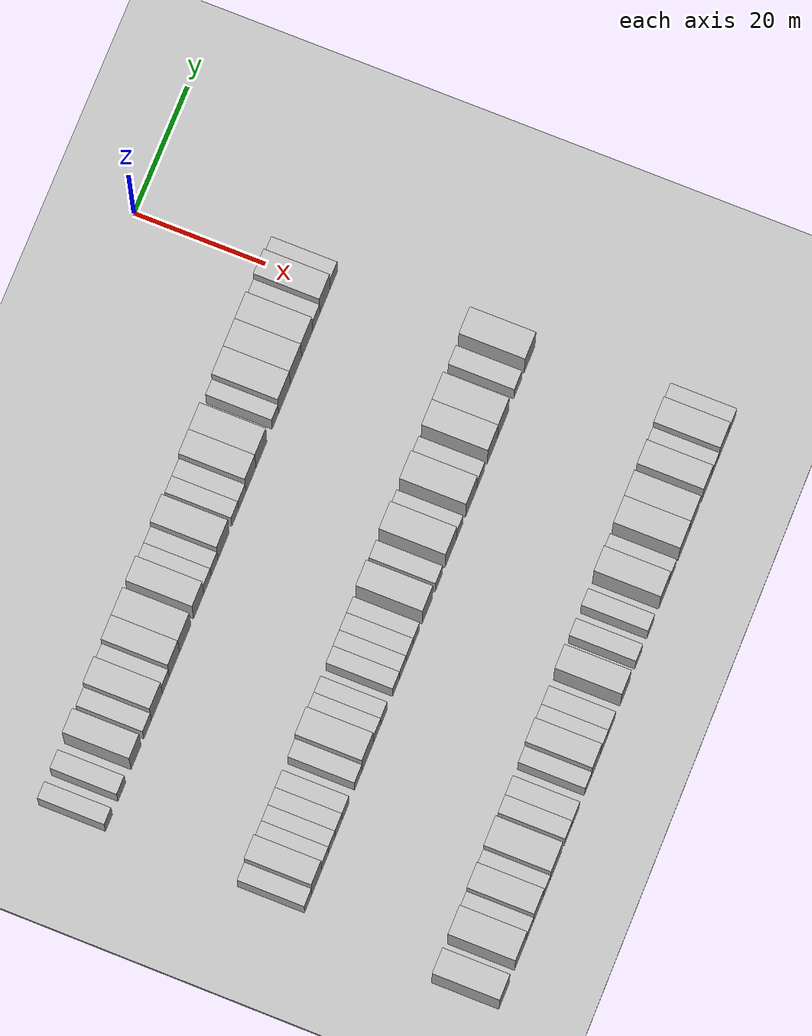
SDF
<sdf version="1.6">
 <world name="default">
  <include><name>ground_plane_1</name><uri>model://HANNAS_ground_plane</uri></include>
  <include>
   <name>ground_plane_2</name>
   <uri>model://HANNAS_ground_plane</uri>
   <pose>100 0 0  0 0 0</pose>
  </include>
  <model name="building_51">
   <static>1</static>
   <pose>25.0000 -82.7685 0 0.000000 0.000000 0.000000</pose>
   <link name="link">
    <pose>0 0 3.00 0 0 0</pose>
    <collision name="collision"><geometry><box><size>10.0000 2.5475 6.0000</size></box></geometry></collision>
    <visual name="visual">
     <cast_shadows>0</cast_shadows>
     <geometry><box><size>10.0000 2.5475 6.0000</size></box></geometry>
     <material>
      <script>
       <uri>model://HANNAS_wall/materials/scripts</uri>
       <uri>model://HANNAS_wall/materials/textures</uri>
       <name>vrc/HANNAS_wall</name>
      </script>
     </material>
    </visual>
   </link>
  </model>
  <model name="building_52">
   <static>1</static>
   <pose>25.0000 -78.0742 0 0.000000 0.000000 0.000000</pose>
   <link name="link">
    <pose>0 0 3.00 0 0 0</pose>
    <collision name="collision"><geometry><box><size>10.0000 2.8412 6.0000</size></box></geometry></collision>
    <visual name="visual">
     <cast_shadows>0</cast_shadows>
     <geometry><box><size>10.0000 2.8412 6.0000</size></box></geometry>
     <material>
      <script>
       <uri>model://HANNAS_wall/materials/scripts</uri>
       <uri>model://HANNAS_wall/materials/textures</uri>
       <name>vrc/HANNAS_wall</name>
      </script>
     </material>
    </visual>
   </link>
  </model>
  <model name="building_53">
   <static>1</static>
   <pose>25.0000 -72.8111 0 0.000000 0.000000 0.000000</pose>
   <link name="link">
    <pose>0 0 4.50 0 0 0</pose>
    <collision name="collision"><geometry><box><size>10.0000 3.6848 9.0000</size></box></geometry></collision>
    <visual name="visual">
     <cast_shadows>0</cast_shadows>
     <geometry><box><size>10.0000 3.6848 9.0000</size></box></geometry>
     <material>
      <script>
       <uri>model://HANNAS_wall/materials/scripts</uri>
       <uri>model://HANNAS_wall/materials/textures</uri>
       <name>vrc/HANNAS_wall</name>
      </script>
     </material>
    </visual>
   </link>
  </model>
  <model name="building_54">
   <static>1</static>
   <pose>25.0000 -68.5531 0 0.000000 0.000000 0.000000</pose>
   <link name="link">
    <pose>0 0 3.00 0 0 0</pose>
    <collision name="collision"><geometry><box><size>10.0000 2.8312 6.0000</size></box></geometry></collision>
    <visual name="visual">
     <cast_shadows>0</cast_shadows>
     <geometry><box><size>10.0000 2.8312 6.0000</size></box></geometry>
     <material>
      <script>
       <uri>model://HANNAS_wall/materials/scripts</uri>
       <uri>model://HANNAS_wall/materials/textures</uri>
       <name>vrc/HANNAS_wall</name>
      </script>
     </material>
    </visual>
   </link>
  </model>
  <model name="building_55">
   <static>1</static>
   <pose>25.0000 -65.1235 0 0.000000 0.000000 0.000000</pose>
   <link name="link">
    <pose>0 0 4.50 0 0 0</pose>
    <collision name="collision"><geometry><box><size>10.0000 4.0279 9.0000</size></box></geometry></collision>
    <visual name="visual">
     <cast_shadows>0</cast_shadows>
     <geometry><box><size>10.0000 4.0279 9.0000</size></box></geometry>
     <material>
      <script>
       <uri>model://HANNAS_wall/materials/scripts</uri>
       <uri>model://HANNAS_wall/materials/textures</uri>
       <name>vrc/HANNAS_wall</name>
      </script>
     </material>
    </visual>
   </link>
  </model>
  <model name="building_56">
   <static>1</static>
   <pose>25.0000 -61.8055 0 0.000000 0.000000 0.000000</pose>
   <link name="link">
    <pose>0 0 3.00 0 0 0</pose>
    <collision name="collision"><geometry><box><size>10.0000 2.6081 6.0000</size></box></geometry></collision>
    <visual name="visual">
     <cast_shadows>0</cast_shadows>
     <geometry><box><size>10.0000 2.6081 6.0000</size></box></geometry>
     <material>
      <script>
       <uri>model://HANNAS_wall/materials/scripts</uri>
       <uri>model://HANNAS_wall/materials/textures</uri>
       <name>vrc/HANNAS_wall</name>
      </script>
     </material>
    </visual>
   </link>
  </model>
  <model name="building_57">
   <static>1</static>
   <pose>25.0000 -58.6286 0 0.000000 0.000000 0.000000</pose>
   <link name="link">
    <pose>0 0 4.50 0 0 0</pose>
    <collision name="collision"><geometry><box><size>10.0000 3.7456 9.0000</size></box></geometry></collision>
    <visual name="visual">
     <cast_shadows>0</cast_shadows>
     <geometry><box><size>10.0000 3.7456 9.0000</size></box></geometry>
     <material>
      <script>
       <uri>model://HANNAS_wall/materials/scripts</uri>
       <uri>model://HANNAS_wall/materials/textures</uri>
       <name>vrc/HANNAS_wall</name>
      </script>
     </material>
    </visual>
   </link>
  </model>
  <model name="building_58">
   <static>1</static>
   <pose>25.0000 -54.6424 0 0.000000 0.000000 0.000000</pose>
   <link name="link">
    <pose>0 0 4.50 0 0 0</pose>
    <collision name="collision"><geometry><box><size>10.0000 4.2268 9.0000</size></box></geometry></collision>
    <visual name="visual">
     <cast_shadows>0</cast_shadows>
     <geometry><box><size>10.0000 4.2268 9.0000</size></box></geometry>
     <material>
      <script>
       <uri>model://HANNAS_wall/materials/scripts</uri>
       <uri>model://HANNAS_wall/materials/textures</uri>
       <name>vrc/HANNAS_wall</name>
      </script>
     </material>
    </visual>
   </link>
  </model>
  <model name="building_59">
   <static>1</static>
   <pose>25.0000 -49.6313 0 0.000000 0.000000 0.000000</pose>
   <link name="link">
    <pose>0 0 4.50 0 0 0</pose>
    <collision name="collision"><geometry><box><size>10.0000 3.7955 9.0000</size></box></geometry></collision>
    <visual name="visual">
     <cast_shadows>0</cast_shadows>
     <geometry><box><size>10.0000 3.7955 9.0000</size></box></geometry>
     <material>
      <script>
       <uri>model://HANNAS_wall/materials/scripts</uri>
       <uri>model://HANNAS_wall/materials/textures</uri>
       <name>vrc/HANNAS_wall</name>
      </script>
     </material>
    </visual>
   </link>
  </model>
  <model name="building_60">
   <static>1</static>
   <pose>25.0000 -46.3752 0 0.000000 0.000000 0.000000</pose>
   <link name="link">
    <pose>0 0 3.00 0 0 0</pose>
    <collision name="collision"><geometry><box><size>10.0000 2.7167 6.0000</size></box></geometry></collision>
    <visual name="visual">
     <cast_shadows>0</cast_shadows>
     <geometry><box><size>10.0000 2.7167 6.0000</size></box></geometry>
     <material>
      <script>
       <uri>model://HANNAS_wall/materials/scripts</uri>
       <uri>model://HANNAS_wall/materials/textures</uri>
       <name>vrc/HANNAS_wall</name>
      </script>
     </material>
    </visual>
   </link>
  </model>
  <model name="building_61">
   <static>1</static>
   <pose>25.0000 -43.7608 0 0.000000 0.000000 0.000000</pose>
   <link name="link">
    <pose>0 0 3.00 0 0 0</pose>
    <collision name="collision"><geometry><box><size>10.0000 2.5121 6.0000</size></box></geometry></collision>
    <visual name="visual">
     <cast_shadows>0</cast_shadows>
     <geometry><box><size>10.0000 2.5121 6.0000</size></box></geometry>
     <material>
      <script>
       <uri>model://HANNAS_wall/materials/scripts</uri>
       <uri>model://HANNAS_wall/materials/textures</uri>
       <name>vrc/HANNAS_wall</name>
      </script>
     </material>
    </visual>
   </link>
  </model>
  <model name="building_62">
   <static>1</static>
   <pose>25.0000 -40.3799 0 0.000000 0.000000 0.000000</pose>
   <link name="link">
    <pose>0 0 4.50 0 0 0</pose>
    <collision name="collision"><geometry><box><size>10.0000 4.2499 9.0000</size></box></geometry></collision>
    <visual name="visual">
     <cast_shadows>0</cast_shadows>
     <geometry><box><size>10.0000 4.2499 9.0000</size></box></geometry>
     <material>
      <script>
       <uri>model://HANNAS_wall/materials/scripts</uri>
       <uri>model://HANNAS_wall/materials/textures</uri>
       <name>vrc/HANNAS_wall</name>
      </script>
     </material>
    </visual>
   </link>
  </model>
  <model name="building_63">
   <static>1</static>
   <pose>25.0000 -35.9774 0 0.000000 0.000000 0.000000</pose>
   <link name="link">
    <pose>0 0 3.00 0 0 0</pose>
    <collision name="collision"><geometry><box><size>10.0000 2.5551 6.0000</size></box></geometry></collision>
    <visual name="visual">
     <cast_shadows>0</cast_shadows>
     <geometry><box><size>10.0000 2.5551 6.0000</size></box></geometry>
     <material>
      <script>
       <uri>model://HANNAS_wall/materials/scripts</uri>
       <uri>model://HANNAS_wall/materials/textures</uri>
       <name>vrc/HANNAS_wall</name>
      </script>
     </material>
    </visual>
   </link>
  </model>
  <model name="building_64">
   <static>1</static>
   <pose>25.0000 -33.3610 0 0.000000 0.000000 0.000000</pose>
   <link name="link">
    <pose>0 0 3.00 0 0 0</pose>
    <collision name="collision"><geometry><box><size>10.0000 2.6778 6.0000</size></box></geometry></collision>
    <visual name="visual">
     <cast_shadows>0</cast_shadows>
     <geometry><box><size>10.0000 2.6778 6.0000</size></box></geometry>
     <material>
      <script>
       <uri>model://HANNAS_wall/materials/scripts</uri>
       <uri>model://HANNAS_wall/materials/textures</uri>
       <name>vrc/HANNAS_wall</name>
      </script>
     </material>
    </visual>
   </link>
  </model>
  <model name="building_65">
   <static>1</static>
   <pose>25.0000 -30.1258 0 0.000000 0.000000 0.000000</pose>
   <link name="link">
    <pose>0 0 4.50 0 0 0</pose>
    <collision name="collision"><geometry><box><size>10.0000 3.7925 9.0000</size></box></geometry></collision>
    <visual name="visual">
     <cast_shadows>0</cast_shadows>
     <geometry><box><size>10.0000 3.7925 9.0000</size></box></geometry>
     <material>
      <script>
       <uri>model://HANNAS_wall/materials/scripts</uri>
       <uri>model://HANNAS_wall/materials/textures</uri>
       <name>vrc/HANNAS_wall</name>
      </script>
     </material>
    </visual>
   </link>
  </model>
  <model name="building_66">
   <static>1</static>
   <pose>25.0000 -26.1723 0 0.000000 0.000000 0.000000</pose>
   <link name="link">
    <pose>0 0 4.50 0 0 0</pose>
    <collision name="collision"><geometry><box><size>10.0000 4.1146 9.0000</size></box></geometry></collision>
    <visual name="visual">
     <cast_shadows>0</cast_shadows>
     <geometry><box><size>10.0000 4.1146 9.0000</size></box></geometry>
     <material>
      <script>
       <uri>model://HANNAS_wall/materials/scripts</uri>
       <uri>model://HANNAS_wall/materials/textures</uri>
       <name>vrc/HANNAS_wall</name>
      </script>
     </material>
    </visual>
   </link>
  </model>
  <model name="building_67">
   <static>1</static>
   <pose>25.0000 -20.9108 0 0.000000 0.000000 0.000000</pose>
   <link name="link">
    <pose>0 0 3.00 0 0 0</pose>
    <collision name="collision"><geometry><box><size>10.0000 2.4083 6.0000</size></box></geometry></collision>
    <visual name="visual">
     <cast_shadows>0</cast_shadows>
     <geometry><box><size>10.0000 2.4083 6.0000</size></box></geometry>
     <material>
      <script>
       <uri>model://HANNAS_wall/materials/scripts</uri>
       <uri>model://HANNAS_wall/materials/textures</uri>
       <name>vrc/HANNAS_wall</name>
      </script>
     </material>
    </visual>
   </link>
  </model>
  <model name="building_68">
   <static>1</static>
   <pose>25.0000 -17.5138 0 0.000000 0.000000 0.000000</pose>
   <link name="link">
    <pose>0 0 4.50 0 0 0</pose>
    <collision name="collision"><geometry><box><size>10.0000 4.3857 9.0000</size></box></geometry></collision>
    <visual name="visual">
     <cast_shadows>0</cast_shadows>
     <geometry><box><size>10.0000 4.3857 9.0000</size></box></geometry>
     <material>
      <script>
       <uri>model://HANNAS_wall/materials/scripts</uri>
       <uri>model://HANNAS_wall/materials/textures</uri>
       <name>vrc/HANNAS_wall</name>
      </script>
     </material>
    </visual>
   </link>
  </model>
  <model name="building_69">
   <static>1</static>
   <pose>25.0000 -13.1848 0 0.000000 0.000000 0.000000</pose>
   <link name="link">
    <pose>0 0 4.50 0 0 0</pose>
    <collision name="collision"><geometry><box><size>10.0000 4.2723 9.0000</size></box></geometry></collision>
    <visual name="visual">
     <cast_shadows>0</cast_shadows>
     <geometry><box><size>10.0000 4.2723 9.0000</size></box></geometry>
     <material>
      <script>
       <uri>model://HANNAS_wall/materials/scripts</uri>
       <uri>model://HANNAS_wall/materials/textures</uri>
       <name>vrc/HANNAS_wall</name>
      </script>
     </material>
    </visual>
   </link>
  </model>
  <model name="building_70">
   <static>1</static>
   <pose>25.0000 -8.9782 0 0.000000 0.000000 0.000000</pose>
   <link name="link">
    <pose>0 0 4.50 0 0 0</pose>
    <collision name="collision"><geometry><box><size>10.0000 4.1408 9.0000</size></box></geometry></collision>
    <visual name="visual">
     <cast_shadows>0</cast_shadows>
     <geometry><box><size>10.0000 4.1408 9.0000</size></box></geometry>
     <material>
      <script>
       <uri>model://HANNAS_wall/materials/scripts</uri>
       <uri>model://HANNAS_wall/materials/textures</uri>
       <name>vrc/HANNAS_wall</name>
      </script>
     </material>
    </visual>
   </link>
  </model>
  <model name="building_71">
   <static>1</static>
   <pose>25.0000 -5.5005 0 0.000000 0.000000 0.000000</pose>
   <link name="link">
    <pose>0 0 3.00 0 0 0</pose>
    <collision name="collision"><geometry><box><size>10.0000 2.8145 6.0000</size></box></geometry></collision>
    <visual name="visual">
     <cast_shadows>0</cast_shadows>
     <geometry><box><size>10.0000 2.8145 6.0000</size></box></geometry>
     <material>
      <script>
       <uri>model://HANNAS_wall/materials/scripts</uri>
       <uri>model://HANNAS_wall/materials/textures</uri>
       <name>vrc/HANNAS_wall</name>
      </script>
     </material>
    </visual>
   </link>
  </model>
  <model name="building_72">
   <static>1</static>
   <pose>25.0000 -2.1521 0 0.000000 0.000000 0.000000</pose>
   <link name="link">
    <pose>0 0 4.50 0 0 0</pose>
    <collision name="collision"><geometry><box><size>10.0000 3.8823 9.0000</size></box></geometry></collision>
    <visual name="visual">
     <cast_shadows>0</cast_shadows>
     <geometry><box><size>10.0000 3.8823 9.0000</size></box></geometry>
     <material>
      <script>
       <uri>model://HANNAS_wall/materials/scripts</uri>
       <uri>model://HANNAS_wall/materials/textures</uri>
       <name>vrc/HANNAS_wall</name>
      </script>
     </material>
    </visual>
   </link>
  </model>
  <model name="building_73">
   <static>1</static>
   <pose>25.0000 1.1869 0 0.000000 0.000000 0.000000</pose>
   <link name="link">
    <pose>0 0 3.00 0 0 0</pose>
    <collision name="collision"><geometry><box><size>10.0000 2.7957 6.0000</size></box></geometry></collision>
    <visual name="visual">
     <cast_shadows>0</cast_shadows>
     <geometry><box><size>10.0000 2.7957 6.0000</size></box></geometry>
     <material>
      <script>
       <uri>model://HANNAS_wall/materials/scripts</uri>
       <uri>model://HANNAS_wall/materials/textures</uri>
       <name>vrc/HANNAS_wall</name>
      </script>
     </material>
    </visual>
   </link>
  </model>
  <model name="building_192">
   <static>1</static>
   <pose>55.0000 -83.0707 0 0.000000 0.000000 0.000000</pose>
   <link name="link">
    <pose>0 0 3.00 0 0 0</pose>
    <collision name="collision"><geometry><box><size>10.0000 2.7193 6.0000</size></box></geometry></collision>
    <visual name="visual">
     <cast_shadows>0</cast_shadows>
     <geometry><box><size>10.0000 2.7193 6.0000</size></box></geometry>
     <material>
      <script>
       <uri>model://HANNAS_wall/materials/scripts</uri>
       <uri>model://HANNAS_wall/materials/textures</uri>
       <name>vrc/HANNAS_wall</name>
      </script>
     </material>
    </visual>
   </link>
  </model>
  <model name="building_193">
   <static>1</static>
   <pose>55.0000 -79.8961 0 0.000000 0.000000 0.000000</pose>
   <link name="link">
    <pose>0 0 4.50 0 0 0</pose>
    <collision name="collision"><geometry><box><size>10.0000 3.6299 9.0000</size></box></geometry></collision>
    <visual name="visual">
     <cast_shadows>0</cast_shadows>
     <geometry><box><size>10.0000 3.6299 9.0000</size></box></geometry>
     <material>
      <script>
       <uri>model://HANNAS_wall/materials/scripts</uri>
       <uri>model://HANNAS_wall/materials/textures</uri>
       <name>vrc/HANNAS_wall</name>
      </script>
     </material>
    </visual>
   </link>
  </model>
  <model name="building_194">
   <static>1</static>
   <pose>55.0000 -76.7607 0 0.000000 0.000000 0.000000</pose>
   <link name="link">
    <pose>0 0 3.00 0 0 0</pose>
    <collision name="collision"><geometry><box><size>10.0000 2.6409 6.0000</size></box></geometry></collision>
    <visual name="visual">
     <cast_shadows>0</cast_shadows>
     <geometry><box><size>10.0000 2.6409 6.0000</size></box></geometry>
     <material>
      <script>
       <uri>model://HANNAS_wall/materials/scripts</uri>
       <uri>model://HANNAS_wall/materials/textures</uri>
       <name>vrc/HANNAS_wall</name>
      </script>
     </material>
    </visual>
   </link>
  </model>
  <model name="building_195">
   <static>1</static>
   <pose>55.0000 -74.2346 0 0.000000 0.000000 0.000000</pose>
   <link name="link">
    <pose>0 0 3.00 0 0 0</pose>
    <collision name="collision"><geometry><box><size>10.0000 2.4113 6.0000</size></box></geometry></collision>
    <visual name="visual">
     <cast_shadows>0</cast_shadows>
     <geometry><box><size>10.0000 2.4113 6.0000</size></box></geometry>
     <material>
      <script>
       <uri>model://HANNAS_wall/materials/scripts</uri>
       <uri>model://HANNAS_wall/materials/textures</uri>
       <name>vrc/HANNAS_wall</name>
      </script>
     </material>
    </visual>
   </link>
  </model>
  <model name="building_196">
   <static>1</static>
   <pose>55.0000 -71.7079 0 0.000000 0.000000 0.000000</pose>
   <link name="link">
    <pose>0 0 3.00 0 0 0</pose>
    <collision name="collision"><geometry><box><size>10.0000 2.6422 6.0000</size></box></geometry></collision>
    <visual name="visual">
     <cast_shadows>0</cast_shadows>
     <geometry><box><size>10.0000 2.6422 6.0000</size></box></geometry>
     <material>
      <script>
       <uri>model://HANNAS_wall/materials/scripts</uri>
       <uri>model://HANNAS_wall/materials/textures</uri>
       <name>vrc/HANNAS_wall</name>
      </script>
     </material>
    </visual>
   </link>
  </model>
  <model name="building_197">
   <static>1</static>
   <pose>55.0000 -69.0763 0 0.000000 0.000000 0.000000</pose>
   <link name="link">
    <pose>0 0 3.00 0 0 0</pose>
    <collision name="collision"><geometry><box><size>10.0000 2.6211 6.0000</size></box></geometry></collision>
    <visual name="visual">
     <cast_shadows>0</cast_shadows>
     <geometry><box><size>10.0000 2.6211 6.0000</size></box></geometry>
     <material>
      <script>
       <uri>model://HANNAS_wall/materials/scripts</uri>
       <uri>model://HANNAS_wall/materials/textures</uri>
       <name>vrc/HANNAS_wall</name>
      </script>
     </material>
    </visual>
   </link>
  </model>
  <model name="building_198">
   <static>1</static>
   <pose>55.0000 -64.3720 0 0.000000 0.000000 0.000000</pose>
   <link name="link">
    <pose>0 0 3.00 0 0 0</pose>
    <collision name="collision"><geometry><box><size>10.0000 2.7875 6.0000</size></box></geometry></collision>
    <visual name="visual">
     <cast_shadows>0</cast_shadows>
     <geometry><box><size>10.0000 2.7875 6.0000</size></box></geometry>
     <material>
      <script>
       <uri>model://HANNAS_wall/materials/scripts</uri>
       <uri>model://HANNAS_wall/materials/textures</uri>
       <name>vrc/HANNAS_wall</name>
      </script>
     </material>
    </visual>
   </link>
  </model>
  <model name="building_199">
   <static>1</static>
   <pose>55.0000 -60.8640 0 0.000000 0.000000 0.000000</pose>
   <link name="link">
    <pose>0 0 4.50 0 0 0</pose>
    <collision name="collision"><geometry><box><size>10.0000 4.2285 9.0000</size></box></geometry></collision>
    <visual name="visual">
     <cast_shadows>0</cast_shadows>
     <geometry><box><size>10.0000 4.2285 9.0000</size></box></geometry>
     <material>
      <script>
       <uri>model://HANNAS_wall/materials/scripts</uri>
       <uri>model://HANNAS_wall/materials/textures</uri>
       <name>vrc/HANNAS_wall</name>
      </script>
     </material>
    </visual>
   </link>
  </model>
  <model name="building_200">
   <static>1</static>
   <pose>55.0000 -57.3499 0 0.000000 0.000000 0.000000</pose>
   <link name="link">
    <pose>0 0 3.00 0 0 0</pose>
    <collision name="collision"><geometry><box><size>10.0000 2.7997 6.0000</size></box></geometry></collision>
    <visual name="visual">
     <cast_shadows>0</cast_shadows>
     <geometry><box><size>10.0000 2.7997 6.0000</size></box></geometry>
     <material>
      <script>
       <uri>model://HANNAS_wall/materials/scripts</uri>
       <uri>model://HANNAS_wall/materials/textures</uri>
       <name>vrc/HANNAS_wall</name>
      </script>
     </material>
    </visual>
   </link>
  </model>
  <model name="building_201">
   <static>1</static>
   <pose>55.0000 -54.7097 0 0.000000 0.000000 0.000000</pose>
   <link name="link">
    <pose>0 0 3.00 0 0 0</pose>
    <collision name="collision"><geometry><box><size>10.0000 2.4806 6.0000</size></box></geometry></collision>
    <visual name="visual">
     <cast_shadows>0</cast_shadows>
     <geometry><box><size>10.0000 2.4806 6.0000</size></box></geometry>
     <material>
      <script>
       <uri>model://HANNAS_wall/materials/scripts</uri>
       <uri>model://HANNAS_wall/materials/textures</uri>
       <name>vrc/HANNAS_wall</name>
      </script>
     </material>
    </visual>
   </link>
  </model>
  <model name="building_202">
   <static>1</static>
   <pose>55.0000 -50.1585 0 0.000000 0.000000 0.000000</pose>
   <link name="link">
    <pose>0 0 3.00 0 0 0</pose>
    <collision name="collision"><geometry><box><size>10.0000 2.6218 6.0000</size></box></geometry></collision>
    <visual name="visual">
     <cast_shadows>0</cast_shadows>
     <geometry><box><size>10.0000 2.6218 6.0000</size></box></geometry>
     <material>
      <script>
       <uri>model://HANNAS_wall/materials/scripts</uri>
       <uri>model://HANNAS_wall/materials/textures</uri>
       <name>vrc/HANNAS_wall</name>
      </script>
     </material>
    </visual>
   </link>
  </model>
  <model name="building_203">
   <static>1</static>
   <pose>55.0000 -47.6365 0 0.000000 0.000000 0.000000</pose>
   <link name="link">
    <pose>0 0 3.00 0 0 0</pose>
    <collision name="collision"><geometry><box><size>10.0000 2.4222 6.0000</size></box></geometry></collision>
    <visual name="visual">
     <cast_shadows>0</cast_shadows>
     <geometry><box><size>10.0000 2.4222 6.0000</size></box></geometry>
     <material>
      <script>
       <uri>model://HANNAS_wall/materials/scripts</uri>
       <uri>model://HANNAS_wall/materials/textures</uri>
       <name>vrc/HANNAS_wall</name>
      </script>
     </material>
    </visual>
   </link>
  </model>
  <model name="building_204">
   <static>1</static>
   <pose>55.0000 -45.0884 0 0.000000 0.000000 0.000000</pose>
   <link name="link">
    <pose>0 0 3.00 0 0 0</pose>
    <collision name="collision"><geometry><box><size>10.0000 2.6740 6.0000</size></box></geometry></collision>
    <visual name="visual">
     <cast_shadows>0</cast_shadows>
     <geometry><box><size>10.0000 2.6740 6.0000</size></box></geometry>
     <material>
      <script>
       <uri>model://HANNAS_wall/materials/scripts</uri>
       <uri>model://HANNAS_wall/materials/textures</uri>
       <name>vrc/HANNAS_wall</name>
      </script>
     </material>
    </visual>
   </link>
  </model>
  <model name="building_205">
   <static>1</static>
   <pose>55.0000 -42.5283 0 0.000000 0.000000 0.000000</pose>
   <link name="link">
    <pose>0 0 3.00 0 0 0</pose>
    <collision name="collision"><geometry><box><size>10.0000 2.4463 6.0000</size></box></geometry></collision>
    <visual name="visual">
     <cast_shadows>0</cast_shadows>
     <geometry><box><size>10.0000 2.4463 6.0000</size></box></geometry>
     <material>
      <script>
       <uri>model://HANNAS_wall/materials/scripts</uri>
       <uri>model://HANNAS_wall/materials/textures</uri>
       <name>vrc/HANNAS_wall</name>
      </script>
     </material>
    </visual>
   </link>
  </model>
  <model name="building_206">
   <static>1</static>
   <pose>55.0000 -38.3389 0 0.000000 0.000000 0.000000</pose>
   <link name="link">
    <pose>0 0 4.50 0 0 0</pose>
    <collision name="collision"><geometry><box><size>10.0000 3.9324 9.0000</size></box></geometry></collision>
    <visual name="visual">
     <cast_shadows>0</cast_shadows>
     <geometry><box><size>10.0000 3.9324 9.0000</size></box></geometry>
     <material>
      <script>
       <uri>model://HANNAS_wall/materials/scripts</uri>
       <uri>model://HANNAS_wall/materials/textures</uri>
       <name>vrc/HANNAS_wall</name>
      </script>
     </material>
    </visual>
   </link>
  </model>
  <model name="building_207">
   <static>1</static>
   <pose>55.0000 -33.9950 0 0.000000 0.000000 0.000000</pose>
   <link name="link">
    <pose>0 0 3.00 0 0 0</pose>
    <collision name="collision"><geometry><box><size>10.0000 2.7554 6.0000</size></box></geometry></collision>
    <visual name="visual">
     <cast_shadows>0</cast_shadows>
     <geometry><box><size>10.0000 2.7554 6.0000</size></box></geometry>
     <material>
      <script>
       <uri>model://HANNAS_wall/materials/scripts</uri>
       <uri>model://HANNAS_wall/materials/textures</uri>
       <name>vrc/HANNAS_wall</name>
      </script>
     </material>
    </visual>
   </link>
  </model>
  <model name="building_208">
   <static>1</static>
   <pose>55.0000 -29.4848 0 0.000000 0.000000 0.000000</pose>
   <link name="link">
    <pose>0 0 4.50 0 0 0</pose>
    <collision name="collision"><geometry><box><size>10.0000 4.2650 9.0000</size></box></geometry></collision>
    <visual name="visual">
     <cast_shadows>0</cast_shadows>
     <geometry><box><size>10.0000 4.2650 9.0000</size></box></geometry>
     <material>
      <script>
       <uri>model://HANNAS_wall/materials/scripts</uri>
       <uri>model://HANNAS_wall/materials/textures</uri>
       <name>vrc/HANNAS_wall</name>
      </script>
     </material>
    </visual>
   </link>
  </model>
  <model name="building_209">
   <static>1</static>
   <pose>55.0000 -26.1138 0 0.000000 0.000000 0.000000</pose>
   <link name="link">
    <pose>0 0 3.00 0 0 0</pose>
    <collision name="collision"><geometry><box><size>10.0000 2.4770 6.0000</size></box></geometry></collision>
    <visual name="visual">
     <cast_shadows>0</cast_shadows>
     <geometry><box><size>10.0000 2.4770 6.0000</size></box></geometry>
     <material>
      <script>
       <uri>model://HANNAS_wall/materials/scripts</uri>
       <uri>model://HANNAS_wall/materials/textures</uri>
       <name>vrc/HANNAS_wall</name>
      </script>
     </material>
    </visual>
   </link>
  </model>
  <model name="building_210">
   <static>1</static>
   <pose>55.0000 -21.7017 0 0.000000 0.000000 0.000000</pose>
   <link name="link">
    <pose>0 0 4.50 0 0 0</pose>
    <collision name="collision"><geometry><box><size>10.0000 4.3473 9.0000</size></box></geometry></collision>
    <visual name="visual">
     <cast_shadows>0</cast_shadows>
     <geometry><box><size>10.0000 4.3473 9.0000</size></box></geometry>
     <material>
      <script>
       <uri>model://HANNAS_wall/materials/scripts</uri>
       <uri>model://HANNAS_wall/materials/textures</uri>
       <name>vrc/HANNAS_wall</name>
      </script>
     </material>
    </visual>
   </link>
  </model>
  <model name="building_211">
   <static>1</static>
   <pose>55.0000 -18.0573 0 0.000000 0.000000 0.000000</pose>
   <link name="link">
    <pose>0 0 3.00 0 0 0</pose>
    <collision name="collision"><geometry><box><size>10.0000 2.9415 6.0000</size></box></geometry></collision>
    <visual name="visual">
     <cast_shadows>0</cast_shadows>
     <geometry><box><size>10.0000 2.9415 6.0000</size></box></geometry>
     <material>
      <script>
       <uri>model://HANNAS_wall/materials/scripts</uri>
       <uri>model://HANNAS_wall/materials/textures</uri>
       <name>vrc/HANNAS_wall</name>
      </script>
     </material>
    </visual>
   </link>
  </model>
  <model name="building_212">
   <static>1</static>
   <pose>55.0000 -13.6101 0 0.000000 0.000000 0.000000</pose>
   <link name="link">
    <pose>0 0 4.50 0 0 0</pose>
    <collision name="collision"><geometry><box><size>10.0000 3.9529 9.0000</size></box></geometry></collision>
    <visual name="visual">
     <cast_shadows>0</cast_shadows>
     <geometry><box><size>10.0000 3.9529 9.0000</size></box></geometry>
     <material>
      <script>
       <uri>model://HANNAS_wall/materials/scripts</uri>
       <uri>model://HANNAS_wall/materials/textures</uri>
       <name>vrc/HANNAS_wall</name>
      </script>
     </material>
    </visual>
   </link>
  </model>
  <model name="building_213">
   <static>1</static>
   <pose>55.0000 -9.5145 0 0.000000 0.000000 0.000000</pose>
   <link name="link">
    <pose>0 0 4.50 0 0 0</pose>
    <collision name="collision"><geometry><box><size>10.0000 4.2383 9.0000</size></box></geometry></collision>
    <visual name="visual">
     <cast_shadows>0</cast_shadows>
     <geometry><box><size>10.0000 4.2383 9.0000</size></box></geometry>
     <material>
      <script>
       <uri>model://HANNAS_wall/materials/scripts</uri>
       <uri>model://HANNAS_wall/materials/textures</uri>
       <name>vrc/HANNAS_wall</name>
      </script>
     </material>
    </visual>
   </link>
  </model>
  <model name="building_214">
   <static>1</static>
   <pose>55.0000 -3.9149 0 0.000000 0.000000 0.000000</pose>
   <link name="link">
    <pose>0 0 3.00 0 0 0</pose>
    <collision name="collision"><geometry><box><size>10.0000 2.9608 6.0000</size></box></geometry></collision>
    <visual name="visual">
     <cast_shadows>0</cast_shadows>
     <geometry><box><size>10.0000 2.9608 6.0000</size></box></geometry>
     <material>
      <script>
       <uri>model://HANNAS_wall/materials/scripts</uri>
       <uri>model://HANNAS_wall/materials/textures</uri>
       <name>vrc/HANNAS_wall</name>
      </script>
     </material>
    </visual>
   </link>
  </model>
  <model name="building_215">
   <static>1</static>
   <pose>55.0000 0.6637 0 0.000000 0.000000 0.000000</pose>
   <link name="link">
    <pose>0 0 4.50 0 0 0</pose>
    <collision name="collision"><geometry><box><size>10.0000 4.1964 9.0000</size></box></geometry></collision>
    <visual name="visual">
     <cast_shadows>0</cast_shadows>
     <geometry><box><size>10.0000 4.1964 9.0000</size></box></geometry>
     <material>
      <script>
       <uri>model://HANNAS_wall/materials/scripts</uri>
       <uri>model://HANNAS_wall/materials/textures</uri>
       <name>vrc/HANNAS_wall</name>
      </script>
     </material>
    </visual>
   </link>
  </model>
  <model name="building_332">
   <static>1</static>
   <pose>85.0000 -85.0298 0 0.000000 0.000000 0.000000</pose>
   <link name="link">
    <pose>0 0 4.50 0 0 0</pose>
    <collision name="collision"><geometry><box><size>10.0000 3.8739 9.0000</size></box></geometry></collision>
    <visual name="visual">
     <cast_shadows>0</cast_shadows>
     <geometry><box><size>10.0000 3.8739 9.0000</size></box></geometry>
     <material>
      <script>
       <uri>model://HANNAS_wall/materials/scripts</uri>
       <uri>model://HANNAS_wall/materials/textures</uri>
       <name>vrc/HANNAS_wall</name>
      </script>
     </material>
    </visual>
   </link>
  </model>
  <model name="building_333">
   <static>1</static>
   <pose>85.0000 -78.8999 0 0.000000 0.000000 0.000000</pose>
   <link name="link">
    <pose>0 0 4.50 0 0 0</pose>
    <collision name="collision"><geometry><box><size>10.0000 4.3859 9.0000</size></box></geometry></collision>
    <visual name="visual">
     <cast_shadows>0</cast_shadows>
     <geometry><box><size>10.0000 4.3859 9.0000</size></box></geometry>
     <material>
      <script>
       <uri>model://HANNAS_wall/materials/scripts</uri>
       <uri>model://HANNAS_wall/materials/textures</uri>
       <name>vrc/HANNAS_wall</name>
      </script>
     </material>
    </visual>
   </link>
  </model>
  <model name="building_334">
   <static>1</static>
   <pose>85.0000 -75.4039 0 0.000000 0.000000 0.000000</pose>
   <link name="link">
    <pose>0 0 3.00 0 0 0</pose>
    <collision name="collision"><geometry><box><size>10.0000 2.6061 6.0000</size></box></geometry></collision>
    <visual name="visual">
     <cast_shadows>0</cast_shadows>
     <geometry><box><size>10.0000 2.6061 6.0000</size></box></geometry>
     <material>
      <script>
       <uri>model://HANNAS_wall/materials/scripts</uri>
       <uri>model://HANNAS_wall/materials/textures</uri>
       <name>vrc/HANNAS_wall</name>
      </script>
     </material>
    </visual>
   </link>
  </model>
  <model name="building_335">
   <static>1</static>
   <pose>85.0000 -72.1865 0 0.000000 0.000000 0.000000</pose>
   <link name="link">
    <pose>0 0 4.50 0 0 0</pose>
    <collision name="collision"><geometry><box><size>10.0000 3.8287 9.0000</size></box></geometry></collision>
    <visual name="visual">
     <cast_shadows>0</cast_shadows>
     <geometry><box><size>10.0000 3.8287 9.0000</size></box></geometry>
     <material>
      <script>
       <uri>model://HANNAS_wall/materials/scripts</uri>
       <uri>model://HANNAS_wall/materials/textures</uri>
       <name>vrc/HANNAS_wall</name>
      </script>
     </material>
    </visual>
   </link>
  </model>
  <model name="building_336">
   <static>1</static>
   <pose>85.0000 -69.0143 0 0.000000 0.000000 0.000000</pose>
   <link name="link">
    <pose>0 0 3.00 0 0 0</pose>
    <collision name="collision"><geometry><box><size>10.0000 2.5158 6.0000</size></box></geometry></collision>
    <visual name="visual">
     <cast_shadows>0</cast_shadows>
     <geometry><box><size>10.0000 2.5158 6.0000</size></box></geometry>
     <material>
      <script>
       <uri>model://HANNAS_wall/materials/scripts</uri>
       <uri>model://HANNAS_wall/materials/textures</uri>
       <name>vrc/HANNAS_wall</name>
      </script>
     </material>
    </visual>
   </link>
  </model>
  <model name="building_337">
   <static>1</static>
   <pose>85.0000 -65.5125 0 0.000000 0.000000 0.000000</pose>
   <link name="link">
    <pose>0 0 4.50 0 0 0</pose>
    <collision name="collision"><geometry><box><size>10.0000 4.4877 9.0000</size></box></geometry></collision>
    <visual name="visual">
     <cast_shadows>0</cast_shadows>
     <geometry><box><size>10.0000 4.4877 9.0000</size></box></geometry>
     <material>
      <script>
       <uri>model://HANNAS_wall/materials/scripts</uri>
       <uri>model://HANNAS_wall/materials/textures</uri>
       <name>vrc/HANNAS_wall</name>
      </script>
     </material>
    </visual>
   </link>
  </model>
  <model name="building_338">
   <static>1</static>
   <pose>85.0000 -60.8903 0 0.000000 0.000000 0.000000</pose>
   <link name="link">
    <pose>0 0 3.00 0 0 0</pose>
    <collision name="collision"><geometry><box><size>10.0000 2.7567 6.0000</size></box></geometry></collision>
    <visual name="visual">
     <cast_shadows>0</cast_shadows>
     <geometry><box><size>10.0000 2.7567 6.0000</size></box></geometry>
     <material>
      <script>
       <uri>model://HANNAS_wall/materials/scripts</uri>
       <uri>model://HANNAS_wall/materials/textures</uri>
       <name>vrc/HANNAS_wall</name>
      </script>
     </material>
    </visual>
   </link>
  </model>
  <model name="building_339">
   <static>1</static>
   <pose>85.0000 -58.0734 0 0.000000 0.000000 0.000000</pose>
   <link name="link">
    <pose>0 0 3.00 0 0 0</pose>
    <collision name="collision"><geometry><box><size>10.0000 2.8771 6.0000</size></box></geometry></collision>
    <visual name="visual">
     <cast_shadows>0</cast_shadows>
     <geometry><box><size>10.0000 2.8771 6.0000</size></box></geometry>
     <material>
      <script>
       <uri>model://HANNAS_wall/materials/scripts</uri>
       <uri>model://HANNAS_wall/materials/textures</uri>
       <name>vrc/HANNAS_wall</name>
      </script>
     </material>
    </visual>
   </link>
  </model>
  <model name="building_340">
   <static>1</static>
   <pose>85.0000 -53.3732 0 0.000000 0.000000 0.000000</pose>
   <link name="link">
    <pose>0 0 3.00 0 0 0</pose>
    <collision name="collision"><geometry><box><size>10.0000 2.5234 6.0000</size></box></geometry></collision>
    <visual name="visual">
     <cast_shadows>0</cast_shadows>
     <geometry><box><size>10.0000 2.5234 6.0000</size></box></geometry>
     <material>
      <script>
       <uri>model://HANNAS_wall/materials/scripts</uri>
       <uri>model://HANNAS_wall/materials/textures</uri>
       <name>vrc/HANNAS_wall</name>
      </script>
     </material>
    </visual>
   </link>
  </model>
  <model name="building_341">
   <static>1</static>
   <pose>85.0000 -50.2726 0 0.000000 0.000000 0.000000</pose>
   <link name="link">
    <pose>0 0 4.50 0 0 0</pose>
    <collision name="collision"><geometry><box><size>10.0000 3.6778 9.0000</size></box></geometry></collision>
    <visual name="visual">
     <cast_shadows>0</cast_shadows>
     <geometry><box><size>10.0000 3.6778 9.0000</size></box></geometry>
     <material>
      <script>
       <uri>model://HANNAS_wall/materials/scripts</uri>
       <uri>model://HANNAS_wall/materials/textures</uri>
       <name>vrc/HANNAS_wall</name>
      </script>
     </material>
    </visual>
   </link>
  </model>
  <model name="building_342">
   <static>1</static>
   <pose>85.0000 -47.1029 0 0.000000 0.000000 0.000000</pose>
   <link name="link">
    <pose>0 0 3.00 0 0 0</pose>
    <collision name="collision"><geometry><box><size>10.0000 2.6616 6.0000</size></box></geometry></collision>
    <visual name="visual">
     <cast_shadows>0</cast_shadows>
     <geometry><box><size>10.0000 2.6616 6.0000</size></box></geometry>
     <material>
      <script>
       <uri>model://HANNAS_wall/materials/scripts</uri>
       <uri>model://HANNAS_wall/materials/textures</uri>
       <name>vrc/HANNAS_wall</name>
      </script>
     </material>
    </visual>
   </link>
  </model>
  <model name="building_343">
   <static>1</static>
   <pose>85.0000 -44.3588 0 0.000000 0.000000 0.000000</pose>
   <link name="link">
    <pose>0 0 3.00 0 0 0</pose>
    <collision name="collision"><geometry><box><size>10.0000 2.8267 6.0000</size></box></geometry></collision>
    <visual name="visual">
     <cast_shadows>0</cast_shadows>
     <geometry><box><size>10.0000 2.8267 6.0000</size></box></geometry>
     <material>
      <script>
       <uri>model://HANNAS_wall/materials/scripts</uri>
       <uri>model://HANNAS_wall/materials/textures</uri>
       <name>vrc/HANNAS_wall</name>
      </script>
     </material>
    </visual>
   </link>
  </model>
  <model name="building_344">
   <static>1</static>
   <pose>85.0000 -39.1100 0 0.000000 0.000000 0.000000</pose>
   <link name="link">
    <pose>0 0 4.50 0 0 0</pose>
    <collision name="collision"><geometry><box><size>10.0000 3.6709 9.0000</size></box></geometry></collision>
    <visual name="visual">
     <cast_shadows>0</cast_shadows>
     <geometry><box><size>10.0000 3.6709 9.0000</size></box></geometry>
     <material>
      <script>
       <uri>model://HANNAS_wall/materials/scripts</uri>
       <uri>model://HANNAS_wall/materials/textures</uri>
       <name>vrc/HANNAS_wall</name>
      </script>
     </material>
    </visual>
   </link>
  </model>
  <model name="building_345">
   <static>1</static>
   <pose>85.0000 -33.9622 0 0.000000 0.000000 0.000000</pose>
   <link name="link">
    <pose>0 0 3.00 0 0 0</pose>
    <collision name="collision"><geometry><box><size>10.0000 2.6245 6.0000</size></box></geometry></collision>
    <visual name="visual">
     <cast_shadows>0</cast_shadows>
     <geometry><box><size>10.0000 2.6245 6.0000</size></box></geometry>
     <material>
      <script>
       <uri>model://HANNAS_wall/materials/scripts</uri>
       <uri>model://HANNAS_wall/materials/textures</uri>
       <name>vrc/HANNAS_wall</name>
      </script>
     </material>
    </visual>
   </link>
  </model>
  <model name="building_346">
   <static>1</static>
   <pose>85.0000 -29.3607 0 0.000000 0.000000 0.000000</pose>
   <link name="link">
    <pose>0 0 3.00 0 0 0</pose>
    <collision name="collision"><geometry><box><size>10.0000 2.5785 6.0000</size></box></geometry></collision>
    <visual name="visual">
     <cast_shadows>0</cast_shadows>
     <geometry><box><size>10.0000 2.5785 6.0000</size></box></geometry>
     <material>
      <script>
       <uri>model://HANNAS_wall/materials/scripts</uri>
       <uri>model://HANNAS_wall/materials/textures</uri>
       <name>vrc/HANNAS_wall</name>
      </script>
     </material>
    </visual>
   </link>
  </model>
  <model name="building_347">
   <static>1</static>
   <pose>85.0000 -24.1444 0 0.000000 0.000000 0.000000</pose>
   <link name="link">
    <pose>0 0 4.50 0 0 0</pose>
    <collision name="collision"><geometry><box><size>10.0000 3.8541 9.0000</size></box></geometry></collision>
    <visual name="visual">
     <cast_shadows>0</cast_shadows>
     <geometry><box><size>10.0000 3.8541 9.0000</size></box></geometry>
     <material>
      <script>
       <uri>model://HANNAS_wall/materials/scripts</uri>
       <uri>model://HANNAS_wall/materials/textures</uri>
       <name>vrc/HANNAS_wall</name>
      </script>
     </material>
    </visual>
   </link>
  </model>
  <model name="building_348">
   <static>1</static>
   <pose>85.0000 -20.9313 0 0.000000 0.000000 0.000000</pose>
   <link name="link">
    <pose>0 0 3.00 0 0 0</pose>
    <collision name="collision"><geometry><box><size>10.0000 2.5720 6.0000</size></box></geometry></collision>
    <visual name="visual">
     <cast_shadows>0</cast_shadows>
     <geometry><box><size>10.0000 2.5720 6.0000</size></box></geometry>
     <material>
      <script>
       <uri>model://HANNAS_wall/materials/scripts</uri>
       <uri>model://HANNAS_wall/materials/textures</uri>
       <name>vrc/HANNAS_wall</name>
      </script>
     </material>
    </visual>
   </link>
  </model>
  <model name="building_349">
   <static>1</static>
   <pose>85.0000 -16.5589 0 0.000000 0.000000 0.000000</pose>
   <link name="link">
    <pose>0 0 4.50 0 0 0</pose>
    <collision name="collision"><geometry><box><size>10.0000 4.1729 9.0000</size></box></geometry></collision>
    <visual name="visual">
     <cast_shadows>0</cast_shadows>
     <geometry><box><size>10.0000 4.1729 9.0000</size></box></geometry>
     <material>
      <script>
       <uri>model://HANNAS_wall/materials/scripts</uri>
       <uri>model://HANNAS_wall/materials/textures</uri>
       <name>vrc/HANNAS_wall</name>
      </script>
     </material>
    </visual>
   </link>
  </model>
  <model name="building_350">
   <static>1</static>
   <pose>85.0000 -12.5271 0 0.000000 0.000000 0.000000</pose>
   <link name="link">
    <pose>0 0 4.50 0 0 0</pose>
    <collision name="collision"><geometry><box><size>10.0000 3.8905 9.0000</size></box></geometry></collision>
    <visual name="visual">
     <cast_shadows>0</cast_shadows>
     <geometry><box><size>10.0000 3.8905 9.0000</size></box></geometry>
     <material>
      <script>
       <uri>model://HANNAS_wall/materials/scripts</uri>
       <uri>model://HANNAS_wall/materials/textures</uri>
       <name>vrc/HANNAS_wall</name>
      </script>
     </material>
    </visual>
   </link>
  </model>
  <model name="building_351">
   <static>1</static>
   <pose>85.0000 -7.7278 0 0.000000 0.000000 0.000000</pose>
   <link name="link">
    <pose>0 0 4.50 0 0 0</pose>
    <collision name="collision"><geometry><box><size>10.0000 3.7082 9.0000</size></box></geometry></collision>
    <visual name="visual">
     <cast_shadows>0</cast_shadows>
     <geometry><box><size>10.0000 3.7082 9.0000</size></box></geometry>
     <material>
      <script>
       <uri>model://HANNAS_wall/materials/scripts</uri>
       <uri>model://HANNAS_wall/materials/textures</uri>
       <name>vrc/HANNAS_wall</name>
      </script>
     </material>
    </visual>
   </link>
  </model>
  <model name="building_352">
   <static>1</static>
   <pose>85.0000 -4.5326 0 0.000000 0.000000 0.000000</pose>
   <link name="link">
    <pose>0 0 3.00 0 0 0</pose>
    <collision name="collision"><geometry><box><size>10.0000 2.6822 6.0000</size></box></geometry></collision>
    <visual name="visual">
     <cast_shadows>0</cast_shadows>
     <geometry><box><size>10.0000 2.6822 6.0000</size></box></geometry>
     <material>
      <script>
       <uri>model://HANNAS_wall/materials/scripts</uri>
       <uri>model://HANNAS_wall/materials/textures</uri>
       <name>vrc/HANNAS_wall</name>
      </script>
     </material>
    </visual>
   </link>
  </model>
  <model name="building_353">
   <static>1</static>
   <pose>85.0000 -1.2151 0 0.000000 0.000000 0.000000</pose>
   <link name="link">
    <pose>0 0 4.50 0 0 0</pose>
    <collision name="collision"><geometry><box><size>10.0000 3.9529 9.0000</size></box></geometry></collision>
    <visual name="visual">
     <cast_shadows>0</cast_shadows>
     <geometry><box><size>10.0000 3.9529 9.0000</size></box></geometry>
     <material>
      <script>
       <uri>model://HANNAS_wall/materials/scripts</uri>
       <uri>model://HANNAS_wall/materials/textures</uri>
       <name>vrc/HANNAS_wall</name>
      </script>
     </material>
    </visual>
   </link>
  </model>
  <model name="building_354">
   <static>1</static>
   <pose>85.0000 2.2089 0 0.000000 0.000000 0.000000</pose>
   <link name="link">
    <pose>0 0 3.00 0 0 0</pose>
    <collision name="collision"><geometry><box><size>10.0000 2.8951 6.0000</size></box></geometry></collision>
    <visual name="visual">
     <cast_shadows>0</cast_shadows>
     <geometry><box><size>10.0000 2.8951 6.0000</size></box></geometry>
     <material>
      <script>
       <uri>model://HANNAS_wall/materials/scripts</uri>
       <uri>model://HANNAS_wall/materials/textures</uri>
       <name>vrc/HANNAS_wall</name>
      </script>
     </material>
    </visual>
   </link>
  </model>
 </world>
</sdf>
